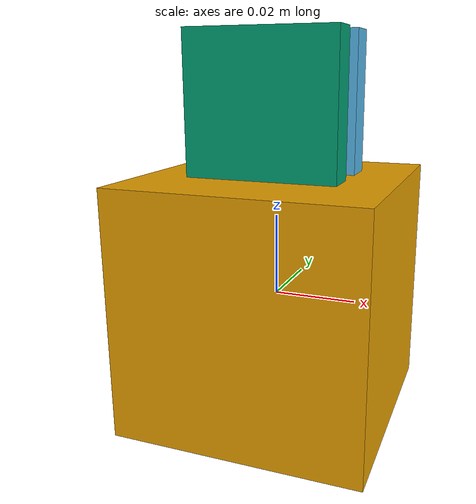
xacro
<?xml version="1.0"?>
<robot name="gripper">

  <!-- Base -->
  <link name="base">
    <visual>
      <geometry>
        <box size="0.0603 0.06 0.06"/>
      </geometry>
      <origin xyz="0 0 0" rpy="0 0 0"/>
    </visual>
  </link>

  <!-- Right finger -->
  <link name="right_finger">
    <visual>
      <geometry>
        <box size="0.03625 0.008 0.0335"/>
      </geometry>
      <origin xyz="0 0.004 0.0470" rpy="0 0 0"/>
    </visual>
    <collision>
      <geometry>
        <box size="0.03625 0.008 0.0335"/>
      </geometry>
    </collision>
  </link>

  <!-- Left finger -->
  <link name="left_finger">
    <visual>
      <geometry>
        <box size="0.03625 0.008 0.0335"/>
      </geometry>
      <origin xyz="0 -0.004 0.0470" rpy="0 0 0"/>
    </visual>
    <collision>
      <geometry>
        <box size="0.03625 0.008 0.0335"/>
      </geometry>
    </collision>
  </link>

  <!-- Right finger prismatic joint -->
  <joint name="right_finger_joint" type="prismatic">
    <parent link="base"/>
    <child link="right_finger"/>
    <origin xyz="0 0.004 0.0" rpy="0 0 0"/>
    <axis xyz="0 1 0"/>
    <limit lower="-0.004" upper="0.02" effort="10" velocity="0.05"/>
  </joint>

  <!-- Left finger prismatic joint (mimics right finger) -->
  <joint name="left_finger_joint" type="prismatic">
    <parent link="base"/>
    <child link="left_finger"/>
    <origin xyz="0 -0.004 0" rpy="0 0 0"/>
    <axis xyz="0 1 0"/>
    <limit lower="-0.004" upper="0.02" effort="10" velocity="0.05"/>
    <mimic joint="right_finger_joint" multiplier="-1" offset="0"/>
  </joint>

</robot>
